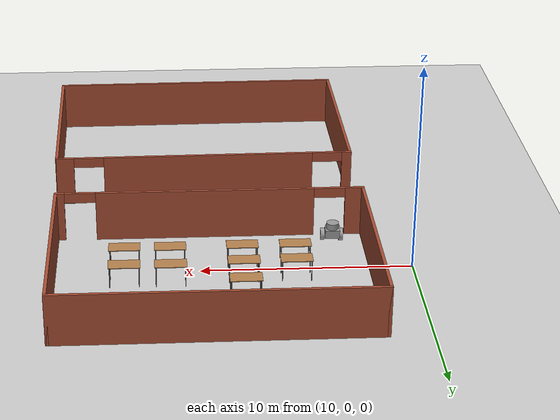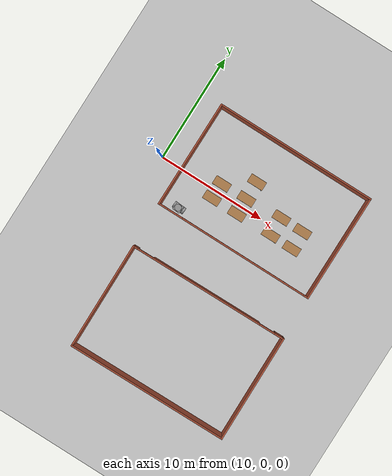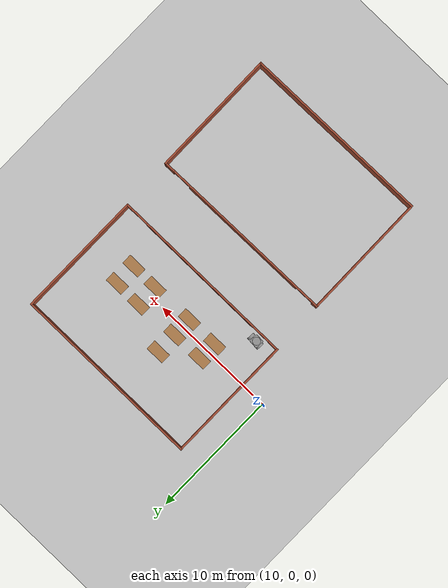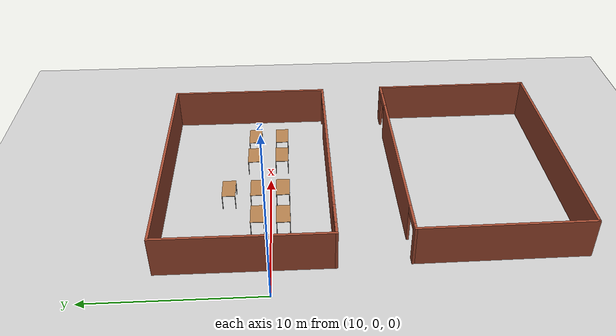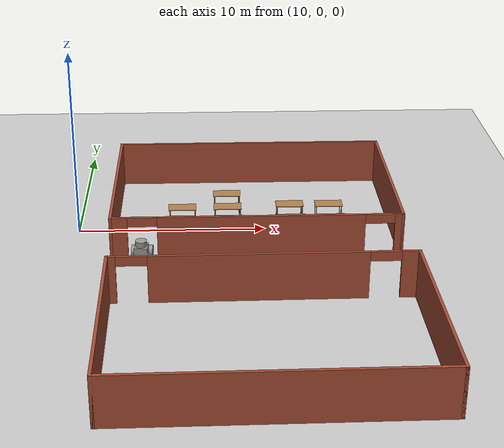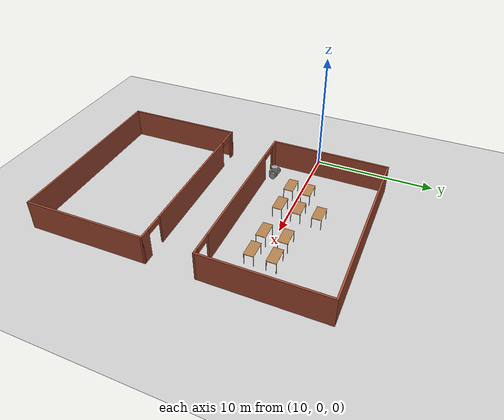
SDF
<sdf version="1.6">
 <world name="default">
  <model name="ground_plane">
   <static>1</static>
   <link name="link">
    <collision name="collision">
     <geometry><plane><normal>0 0 1</normal><size>100 100</size></plane></geometry>
     <surface>
      <contact><collide_bitmask>65535</collide_bitmask></contact>
      <friction><ode><mu>100</mu><mu2>50</mu2></ode></friction>
     </surface>
    </collision>
    <visual name="visual">
     <cast_shadows>0</cast_shadows>
     <geometry><plane><normal>0 0 1</normal><size>100 100</size></plane></geometry>
     <material>
      <script><uri>file://media/materials/scripts/gazebo.material</uri><name>Gazebo/Grey</name></script>
     </material>
    </visual>
   </link>
  </model>
  <model name="classroom_0">
   <pose>19.4231 1.37785 0 0 -0 0</pose>
   <link name="Wall_0">
    <collision name="Wall_0_Collision">
     <geometry><box><size>10 0.15 2.5</size></box></geometry>
     <pose>0 0 1.25 0 -0 0</pose>
    </collision>
    <visual name="Wall_0_Visual">
     <pose>0 0 1.25 0 -0 0</pose>
     <geometry><box><size>10 0.15 2.5</size></box></geometry>
     <material>
      <script><uri>file://media/materials/scripts/gazebo.material</uri><name>Gazebo/Bricks</name></script>
      <ambient>1 1 1 1</ambient>
     </material>
     <meta><layer>0</layer></meta>
    </visual>
    <pose>-7.425 0 0 0 -0 1.5708</pose>
   </link>
   <link name="Wall_2">
    <collision name="Wall_2_Collision">
     <geometry><box><size>15 0.15 2.5</size></box></geometry>
     <pose>0 0 1.25 0 -0 0</pose>
    </collision>
    <visual name="Wall_2_Visual">
     <pose>0 0 1.25 0 -0 0</pose>
     <geometry><box><size>15 0.15 2.5</size></box></geometry>
     <material>
      <script><uri>file://media/materials/scripts/gazebo.material</uri><name>Gazebo/Bricks</name></script>
      <ambient>1 1 1 1</ambient>
     </material>
     <meta><layer>0</layer></meta>
    </visual>
    <pose>0 4.925 0 0 -0 0</pose>
   </link>
   <link name="Wall_4">
    <collision name="Wall_4_Collision">
     <geometry><box><size>10 0.15 2.5</size></box></geometry>
     <pose>0 0 1.25 0 -0 0</pose>
    </collision>
    <visual name="Wall_4_Visual">
     <pose>0 0 1.25 0 -0 0</pose>
     <geometry><box><size>10 0.15 2.5</size></box></geometry>
     <material>
      <script><uri>file://media/materials/scripts/gazebo.material</uri><name>Gazebo/Bricks</name></script>
      <ambient>1 1 1 1</ambient>
     </material>
     <meta><layer>0</layer></meta>
    </visual>
    <pose>7.425 0 0 0 0 -1.5708</pose>
   </link>
   <link name="Wall_6">
    <pose>0 -4.925 0 0 -0 0</pose>
    <visual name="Wall_6_Visual_0">
     <pose>-7.03429 0 1.25 0 -0 0</pose>
     <geometry><box><size>0.931421 0.15 2.5</size></box></geometry>
     <material>
      <script><uri>file://media/materials/scripts/gazebo.material</uri><name>Gazebo/Bricks</name></script>
      <ambient>1 1 1 1</ambient>
     </material>
     <meta><layer>0</layer></meta>
    </visual>
    <collision name="Wall_6_Collision_0">
     <geometry><box><size>0.931421 0.15 2.5</size></box></geometry>
     <pose>-7.03429 0 1.25 0 -0 0</pose>
    </collision>
    <visual name="Wall_6_Visual_1">
     <pose>0.218509 0 1.25 0 -0 0</pose>
     <geometry><box><size>10.5742 0.15 2.5</size></box></geometry>
     <material>
      <script><uri>file://media/materials/scripts/gazebo.material</uri><name>Gazebo/Bricks</name></script>
      <ambient>1 1 1 1</ambient>
     </material>
     <meta><layer>0</layer></meta>
    </visual>
    <collision name="Wall_6_Collision_1">
     <geometry><box><size>10.5742 0.15 2.5</size></box></geometry>
     <pose>0.218509 0 1.25 0 -0 0</pose>
    </collision>
    <visual name="Wall_6_Visual_2">
     <pose>7.2528 0 1.25 0 -0 0</pose>
     <geometry><box><size>0.494402 0.15 2.5</size></box></geometry>
     <material>
      <script><uri>file://media/materials/scripts/gazebo.material</uri><name>Gazebo/Bricks</name></script>
      <ambient>1 1 1 1</ambient>
     </material>
     <meta><layer>0</layer></meta>
    </visual>
    <collision name="Wall_6_Collision_2">
     <geometry><box><size>0.494402 0.15 2.5</size></box></geometry>
     <pose>7.2528 0 1.25 0 -0 0</pose>
    </collision>
    <visual name="Wall_6_Visual_3">
     <pose>-5.81858 0 2.25 0 -0 0</pose>
     <geometry><box><size>1.5 0.15 0.5</size></box></geometry>
     <material>
      <script><uri>file://media/materials/scripts/gazebo.material</uri><name>Gazebo/Bricks</name></script>
      <ambient>1 1 1 1</ambient>
     </material>
     <meta><layer>0</layer></meta>
    </visual>
    <collision name="Wall_6_Collision_3">
     <geometry><box><size>1.5 0.15 0.5</size></box></geometry>
     <pose>-5.81858 0 2.25 0 -0 0</pose>
    </collision>
    <visual name="Wall_6_Visual_4">
     <pose>6.2556 0 2.25 0 -0 0</pose>
     <geometry><box><size>1.5 0.15 0.5</size></box></geometry>
     <material>
      <script><uri>file://media/materials/scripts/gazebo.material</uri><name>Gazebo/Bricks</name></script>
      <ambient>1 1 1 1</ambient>
     </material>
     <meta><layer>0</layer></meta>
    </visual>
    <collision name="Wall_6_Collision_4">
     <geometry><box><size>1.5 0.15 0.5</size></box></geometry>
     <pose>6.2556 0 2.25 0 -0 0</pose>
    </collision>
   </link>
   <static>1</static>
  </model>
  <model name="table">
   <static>1</static>
   <link name="link">
    <collision name="surface">
     <pose>0 0 1 0 -0 0</pose>
     <geometry><box><size>1.5 0.8 0.03</size></box></geometry>
     <surface><friction><ode><mu>0.6</mu><mu2>0.6</mu2></ode></friction></surface>
    </collision>
    <visual name="visual1">
     <pose>0 0 1 0 -0 0</pose>
     <geometry><box><size>1.5 0.8 0.03</size></box></geometry>
     <material>
      <script><uri>file://media/materials/scripts/gazebo.material</uri><name>Gazebo/Wood</name></script>
     </material>
    </visual>
    <collision name="front_left_leg">
     <pose>0.68 0.38 0.5 0 -0 0</pose>
     <geometry><cylinder><radius>0.02</radius><length>1</length></cylinder></geometry>
    </collision>
    <visual name="front_left_leg">
     <pose>0.68 0.38 0.5 0 -0 0</pose>
     <geometry><cylinder><radius>0.02</radius><length>1</length></cylinder></geometry>
     <material>
      <script><uri>file://media/materials/scripts/gazebo.material</uri><name>Gazebo/Grey</name></script>
     </material>
    </visual>
    <collision name="front_right_leg">
     <pose>0.68 -0.38 0.5 0 -0 0</pose>
     <geometry><cylinder><radius>0.02</radius><length>1</length></cylinder></geometry>
    </collision>
    <visual name="front_right_leg">
     <pose>0.68 -0.38 0.5 0 -0 0</pose>
     <geometry><cylinder><radius>0.02</radius><length>1</length></cylinder></geometry>
     <material>
      <script><uri>file://media/materials/scripts/gazebo.material</uri><name>Gazebo/Grey</name></script>
     </material>
    </visual>
    <collision name="back_right_leg">
     <pose>-0.68 -0.38 0.5 0 -0 0</pose>
     <geometry><cylinder><radius>0.02</radius><length>1</length></cylinder></geometry>
    </collision>
    <visual name="back_right_leg">
     <pose>-0.68 -0.38 0.5 0 -0 0</pose>
     <geometry><cylinder><radius>0.02</radius><length>1</length></cylinder></geometry>
     <material>
      <script><uri>file://media/materials/scripts/gazebo.material</uri><name>Gazebo/Grey</name></script>
     </material>
    </visual>
    <collision name="back_left_leg">
     <pose>-0.68 0.38 0.5 0 -0 0</pose>
     <geometry><cylinder><radius>0.02</radius><length>1</length></cylinder></geometry>
    </collision>
    <visual name="back_left_leg">
     <pose>-0.68 0.38 0.5 0 -0 0</pose>
     <geometry><cylinder><radius>0.02</radius><length>1</length></cylinder></geometry>
     <material>
      <script><uri>file://media/materials/scripts/gazebo.material</uri><name>Gazebo/Grey</name></script>
     </material>
    </visual>
   </link>
   <pose>23.5484 -0.724689 0 0 -0 0</pose>
  </model>
  <model name="table_0">
   <static>1</static>
   <link name="link">
    <collision name="surface">
     <pose>0 0 1 0 -0 0</pose>
     <geometry><box><size>1.5 0.8 0.03</size></box></geometry>
     <surface><friction><ode><mu>0.6</mu><mu2>0.6</mu2></ode></friction></surface>
    </collision>
    <visual name="visual1">
     <pose>0 0 1 0 -0 0</pose>
     <geometry><box><size>1.5 0.8 0.03</size></box></geometry>
     <material>
      <script><uri>file://media/materials/scripts/gazebo.material</uri><name>Gazebo/Wood</name></script>
     </material>
    </visual>
    <collision name="front_left_leg">
     <pose>0.68 0.38 0.5 0 -0 0</pose>
     <geometry><cylinder><radius>0.02</radius><length>1</length></cylinder></geometry>
    </collision>
    <visual name="front_left_leg">
     <pose>0.68 0.38 0.5 0 -0 0</pose>
     <geometry><cylinder><radius>0.02</radius><length>1</length></cylinder></geometry>
     <material>
      <script><uri>file://media/materials/scripts/gazebo.material</uri><name>Gazebo/Grey</name></script>
     </material>
    </visual>
    <collision name="front_right_leg">
     <pose>0.68 -0.38 0.5 0 -0 0</pose>
     <geometry><cylinder><radius>0.02</radius><length>1</length></cylinder></geometry>
    </collision>
    <visual name="front_right_leg">
     <pose>0.68 -0.38 0.5 0 -0 0</pose>
     <geometry><cylinder><radius>0.02</radius><length>1</length></cylinder></geometry>
     <material>
      <script><uri>file://media/materials/scripts/gazebo.material</uri><name>Gazebo/Grey</name></script>
     </material>
    </visual>
    <collision name="back_right_leg">
     <pose>-0.68 -0.38 0.5 0 -0 0</pose>
     <geometry><cylinder><radius>0.02</radius><length>1</length></cylinder></geometry>
    </collision>
    <visual name="back_right_leg">
     <pose>-0.68 -0.38 0.5 0 -0 0</pose>
     <geometry><cylinder><radius>0.02</radius><length>1</length></cylinder></geometry>
     <material>
      <script><uri>file://media/materials/scripts/gazebo.material</uri><name>Gazebo/Grey</name></script>
     </material>
    </visual>
    <collision name="back_left_leg">
     <pose>-0.68 0.38 0.5 0 -0 0</pose>
     <geometry><cylinder><radius>0.02</radius><length>1</length></cylinder></geometry>
    </collision>
    <visual name="back_left_leg">
     <pose>-0.68 0.38 0.5 0 -0 0</pose>
     <geometry><cylinder><radius>0.02</radius><length>1</length></cylinder></geometry>
     <material>
      <script><uri>file://media/materials/scripts/gazebo.material</uri><name>Gazebo/Grey</name></script>
     </material>
    </visual>
   </link>
   <pose>23.5484 0.989239 0 0 -0 0</pose>
  </model>
  <model name="table_3">
   <static>1</static>
   <link name="link">
    <collision name="surface">
     <pose>0 0 1 0 -0 0</pose>
     <geometry><box><size>1.5 0.8 0.03</size></box></geometry>
     <surface><friction><ode><mu>0.6</mu><mu2>0.6</mu2></ode></friction></surface>
    </collision>
    <visual name="visual1">
     <pose>0 0 1 0 -0 0</pose>
     <geometry><box><size>1.5 0.8 0.03</size></box></geometry>
     <material>
      <script><uri>file://media/materials/scripts/gazebo.material</uri><name>Gazebo/Wood</name></script>
     </material>
    </visual>
    <collision name="front_left_leg">
     <pose>0.68 0.38 0.5 0 -0 0</pose>
     <geometry><cylinder><radius>0.02</radius><length>1</length></cylinder></geometry>
    </collision>
    <visual name="front_left_leg">
     <pose>0.68 0.38 0.5 0 -0 0</pose>
     <geometry><cylinder><radius>0.02</radius><length>1</length></cylinder></geometry>
     <material>
      <script><uri>file://media/materials/scripts/gazebo.material</uri><name>Gazebo/Grey</name></script>
     </material>
    </visual>
    <collision name="front_right_leg">
     <pose>0.68 -0.38 0.5 0 -0 0</pose>
     <geometry><cylinder><radius>0.02</radius><length>1</length></cylinder></geometry>
    </collision>
    <visual name="front_right_leg">
     <pose>0.68 -0.38 0.5 0 -0 0</pose>
     <geometry><cylinder><radius>0.02</radius><length>1</length></cylinder></geometry>
     <material>
      <script><uri>file://media/materials/scripts/gazebo.material</uri><name>Gazebo/Grey</name></script>
     </material>
    </visual>
    <collision name="back_right_leg">
     <pose>-0.68 -0.38 0.5 0 -0 0</pose>
     <geometry><cylinder><radius>0.02</radius><length>1</length></cylinder></geometry>
    </collision>
    <visual name="back_right_leg">
     <pose>-0.68 -0.38 0.5 0 -0 0</pose>
     <geometry><cylinder><radius>0.02</radius><length>1</length></cylinder></geometry>
     <material>
      <script><uri>file://media/materials/scripts/gazebo.material</uri><name>Gazebo/Grey</name></script>
     </material>
    </visual>
    <collision name="back_left_leg">
     <pose>-0.68 0.38 0.5 0 -0 0</pose>
     <geometry><cylinder><radius>0.02</radius><length>1</length></cylinder></geometry>
    </collision>
    <visual name="back_left_leg">
     <pose>-0.68 0.38 0.5 0 -0 0</pose>
     <geometry><cylinder><radius>0.02</radius><length>1</length></cylinder></geometry>
     <material>
      <script><uri>file://media/materials/scripts/gazebo.material</uri><name>Gazebo/Grey</name></script>
     </material>
    </visual>
   </link>
   <pose>21.4065 -0.695779 0 0 -0 0</pose>
  </model>
  <model name="table_4">
   <static>1</static>
   <link name="link">
    <collision name="surface">
     <pose>0 0 1 0 -0 0</pose>
     <geometry><box><size>1.5 0.8 0.03</size></box></geometry>
     <surface><friction><ode><mu>0.6</mu><mu2>0.6</mu2></ode></friction></surface>
    </collision>
    <visual name="visual1">
     <pose>0 0 1 0 -0 0</pose>
     <geometry><box><size>1.5 0.8 0.03</size></box></geometry>
     <material>
      <script><uri>file://media/materials/scripts/gazebo.material</uri><name>Gazebo/Wood</name></script>
     </material>
    </visual>
    <collision name="front_left_leg">
     <pose>0.68 0.38 0.5 0 -0 0</pose>
     <geometry><cylinder><radius>0.02</radius><length>1</length></cylinder></geometry>
    </collision>
    <visual name="front_left_leg">
     <pose>0.68 0.38 0.5 0 -0 0</pose>
     <geometry><cylinder><radius>0.02</radius><length>1</length></cylinder></geometry>
     <material>
      <script><uri>file://media/materials/scripts/gazebo.material</uri><name>Gazebo/Grey</name></script>
     </material>
    </visual>
    <collision name="front_right_leg">
     <pose>0.68 -0.38 0.5 0 -0 0</pose>
     <geometry><cylinder><radius>0.02</radius><length>1</length></cylinder></geometry>
    </collision>
    <visual name="front_right_leg">
     <pose>0.68 -0.38 0.5 0 -0 0</pose>
     <geometry><cylinder><radius>0.02</radius><length>1</length></cylinder></geometry>
     <material>
      <script><uri>file://media/materials/scripts/gazebo.material</uri><name>Gazebo/Grey</name></script>
     </material>
    </visual>
    <collision name="back_right_leg">
     <pose>-0.68 -0.38 0.5 0 -0 0</pose>
     <geometry><cylinder><radius>0.02</radius><length>1</length></cylinder></geometry>
    </collision>
    <visual name="back_right_leg">
     <pose>-0.68 -0.38 0.5 0 -0 0</pose>
     <geometry><cylinder><radius>0.02</radius><length>1</length></cylinder></geometry>
     <material>
      <script><uri>file://media/materials/scripts/gazebo.material</uri><name>Gazebo/Grey</name></script>
     </material>
    </visual>
    <collision name="back_left_leg">
     <pose>-0.68 0.38 0.5 0 -0 0</pose>
     <geometry><cylinder><radius>0.02</radius><length>1</length></cylinder></geometry>
    </collision>
    <visual name="back_left_leg">
     <pose>-0.68 0.38 0.5 0 -0 0</pose>
     <geometry><cylinder><radius>0.02</radius><length>1</length></cylinder></geometry>
     <material>
      <script><uri>file://media/materials/scripts/gazebo.material</uri><name>Gazebo/Grey</name></script>
     </material>
    </visual>
   </link>
   <pose>21.4065 1.01938 0 0 -0 0</pose>
  </model>
  <model name="table_clone">
   <static>1</static>
   <link name="link">
    <collision name="surface">
     <pose>0 0 1 0 -0 0</pose>
     <geometry><box><size>1.5 0.8 0.03</size></box></geometry>
     <surface><friction><ode><mu>0.6</mu><mu2>0.6</mu2></ode></friction></surface>
    </collision>
    <visual name="visual1">
     <pose>0 0 1 0 -0 0</pose>
     <geometry><box><size>1.5 0.8 0.03</size></box></geometry>
     <material>
      <script><uri>file://media/materials/scripts/gazebo.material</uri><name>Gazebo/Wood</name></script>
     </material>
    </visual>
    <collision name="front_left_leg">
     <pose>0.68 0.38 0.5 0 -0 0</pose>
     <geometry><cylinder><radius>0.02</radius><length>1</length></cylinder></geometry>
    </collision>
    <visual name="front_left_leg">
     <pose>0.68 0.38 0.5 0 -0 0</pose>
     <geometry><cylinder><radius>0.02</radius><length>1</length></cylinder></geometry>
     <material>
      <script><uri>file://media/materials/scripts/gazebo.material</uri><name>Gazebo/Grey</name></script>
     </material>
    </visual>
    <collision name="front_right_leg">
     <pose>0.68 -0.38 0.5 0 -0 0</pose>
     <geometry><cylinder><radius>0.02</radius><length>1</length></cylinder></geometry>
    </collision>
    <visual name="front_right_leg">
     <pose>0.68 -0.38 0.5 0 -0 0</pose>
     <geometry><cylinder><radius>0.02</radius><length>1</length></cylinder></geometry>
     <material>
      <script><uri>file://media/materials/scripts/gazebo.material</uri><name>Gazebo/Grey</name></script>
     </material>
    </visual>
    <collision name="back_right_leg">
     <pose>-0.68 -0.38 0.5 0 -0 0</pose>
     <geometry><cylinder><radius>0.02</radius><length>1</length></cylinder></geometry>
    </collision>
    <visual name="back_right_leg">
     <pose>-0.68 -0.38 0.5 0 -0 0</pose>
     <geometry><cylinder><radius>0.02</radius><length>1</length></cylinder></geometry>
     <material>
      <script><uri>file://media/materials/scripts/gazebo.material</uri><name>Gazebo/Grey</name></script>
     </material>
    </visual>
    <collision name="back_left_leg">
     <pose>-0.68 0.38 0.5 0 -0 0</pose>
     <geometry><cylinder><radius>0.02</radius><length>1</length></cylinder></geometry>
    </collision>
    <visual name="back_left_leg">
     <pose>-0.68 0.38 0.5 0 -0 0</pose>
     <geometry><cylinder><radius>0.02</radius><length>1</length></cylinder></geometry>
     <material>
      <script><uri>file://media/materials/scripts/gazebo.material</uri><name>Gazebo/Grey</name></script>
     </material>
    </visual>
   </link>
   <pose>18.0095 -0.736445 0 0 -0 0</pose>
  </model>
  <model name="table_clone_clone">
   <static>1</static>
   <link name="link">
    <collision name="surface">
     <pose>0 0 1 0 -0 0</pose>
     <geometry><box><size>1.5 0.8 0.03</size></box></geometry>
     <surface><friction><ode><mu>0.6</mu><mu2>0.6</mu2></ode></friction></surface>
    </collision>
    <visual name="visual1">
     <pose>0 0 1 0 -0 0</pose>
     <geometry><box><size>1.5 0.8 0.03</size></box></geometry>
     <material>
      <script><uri>file://media/materials/scripts/gazebo.material</uri><name>Gazebo/Wood</name></script>
     </material>
    </visual>
    <collision name="front_left_leg">
     <pose>0.68 0.38 0.5 0 -0 0</pose>
     <geometry><cylinder><radius>0.02</radius><length>1</length></cylinder></geometry>
    </collision>
    <visual name="front_left_leg">
     <pose>0.68 0.38 0.5 0 -0 0</pose>
     <geometry><cylinder><radius>0.02</radius><length>1</length></cylinder></geometry>
     <material>
      <script><uri>file://media/materials/scripts/gazebo.material</uri><name>Gazebo/Grey</name></script>
     </material>
    </visual>
    <collision name="front_right_leg">
     <pose>0.68 -0.38 0.5 0 -0 0</pose>
     <geometry><cylinder><radius>0.02</radius><length>1</length></cylinder></geometry>
    </collision>
    <visual name="front_right_leg">
     <pose>0.68 -0.38 0.5 0 -0 0</pose>
     <geometry><cylinder><radius>0.02</radius><length>1</length></cylinder></geometry>
     <material>
      <script><uri>file://media/materials/scripts/gazebo.material</uri><name>Gazebo/Grey</name></script>
     </material>
    </visual>
    <collision name="back_right_leg">
     <pose>-0.68 -0.38 0.5 0 -0 0</pose>
     <geometry><cylinder><radius>0.02</radius><length>1</length></cylinder></geometry>
    </collision>
    <visual name="back_right_leg">
     <pose>-0.68 -0.38 0.5 0 -0 0</pose>
     <geometry><cylinder><radius>0.02</radius><length>1</length></cylinder></geometry>
     <material>
      <script><uri>file://media/materials/scripts/gazebo.material</uri><name>Gazebo/Grey</name></script>
     </material>
    </visual>
    <collision name="back_left_leg">
     <pose>-0.68 0.38 0.5 0 -0 0</pose>
     <geometry><cylinder><radius>0.02</radius><length>1</length></cylinder></geometry>
    </collision>
    <visual name="back_left_leg">
     <pose>-0.68 0.38 0.5 0 -0 0</pose>
     <geometry><cylinder><radius>0.02</radius><length>1</length></cylinder></geometry>
     <material>
      <script><uri>file://media/materials/scripts/gazebo.material</uri><name>Gazebo/Grey</name></script>
     </material>
    </visual>
   </link>
   <pose>18.0095 0.789 0 0 -0 0</pose>
  </model>
  <model name="table_clone_clone_clone">
   <static>1</static>
   <link name="link">
    <collision name="surface">
     <pose>0 0 1 0 -0 0</pose>
     <geometry><box><size>1.5 0.8 0.03</size></box></geometry>
     <surface><friction><ode><mu>0.6</mu><mu2>0.6</mu2></ode></friction></surface>
    </collision>
    <visual name="visual1">
     <pose>0 0 1 0 -0 0</pose>
     <geometry><box><size>1.5 0.8 0.03</size></box></geometry>
     <material>
      <script><uri>file://media/materials/scripts/gazebo.material</uri><name>Gazebo/Wood</name></script>
     </material>
    </visual>
    <collision name="front_left_leg">
     <pose>0.68 0.38 0.5 0 -0 0</pose>
     <geometry><cylinder><radius>0.02</radius><length>1</length></cylinder></geometry>
    </collision>
    <visual name="front_left_leg">
     <pose>0.68 0.38 0.5 0 -0 0</pose>
     <geometry><cylinder><radius>0.02</radius><length>1</length></cylinder></geometry>
     <material>
      <script><uri>file://media/materials/scripts/gazebo.material</uri><name>Gazebo/Grey</name></script>
     </material>
    </visual>
    <collision name="front_right_leg">
     <pose>0.68 -0.38 0.5 0 -0 0</pose>
     <geometry><cylinder><radius>0.02</radius><length>1</length></cylinder></geometry>
    </collision>
    <visual name="front_right_leg">
     <pose>0.68 -0.38 0.5 0 -0 0</pose>
     <geometry><cylinder><radius>0.02</radius><length>1</length></cylinder></geometry>
     <material>
      <script><uri>file://media/materials/scripts/gazebo.material</uri><name>Gazebo/Grey</name></script>
     </material>
    </visual>
    <collision name="back_right_leg">
     <pose>-0.68 -0.38 0.5 0 -0 0</pose>
     <geometry><cylinder><radius>0.02</radius><length>1</length></cylinder></geometry>
    </collision>
    <visual name="back_right_leg">
     <pose>-0.68 -0.38 0.5 0 -0 0</pose>
     <geometry><cylinder><radius>0.02</radius><length>1</length></cylinder></geometry>
     <material>
      <script><uri>file://media/materials/scripts/gazebo.material</uri><name>Gazebo/Grey</name></script>
     </material>
    </visual>
    <collision name="back_left_leg">
     <pose>-0.68 0.38 0.5 0 -0 0</pose>
     <geometry><cylinder><radius>0.02</radius><length>1</length></cylinder></geometry>
    </collision>
    <visual name="back_left_leg">
     <pose>-0.68 0.38 0.5 0 -0 0</pose>
     <geometry><cylinder><radius>0.02</radius><length>1</length></cylinder></geometry>
     <material>
      <script><uri>file://media/materials/scripts/gazebo.material</uri><name>Gazebo/Grey</name></script>
     </material>
    </visual>
   </link>
   <pose>18.0095 2.47853 0 0 -0 0</pose>
  </model>
  <model name="table_clone_clone_clone_clone_0">
   <static>1</static>
   <link name="link">
    <collision name="surface">
     <pose>0 0 1 0 -0 0</pose>
     <geometry><box><size>1.5 0.8 0.03</size></box></geometry>
     <surface><friction><ode><mu>0.6</mu><mu2>0.6</mu2></ode></friction></surface>
    </collision>
    <visual name="visual1">
     <pose>0 0 1 0 -0 0</pose>
     <geometry><box><size>1.5 0.8 0.03</size></box></geometry>
     <material>
      <script><uri>file://media/materials/scripts/gazebo.material</uri><name>Gazebo/Wood</name></script>
     </material>
    </visual>
    <collision name="front_left_leg">
     <pose>0.68 0.38 0.5 0 -0 0</pose>
     <geometry><cylinder><radius>0.02</radius><length>1</length></cylinder></geometry>
    </collision>
    <visual name="front_left_leg">
     <pose>0.68 0.38 0.5 0 -0 0</pose>
     <geometry><cylinder><radius>0.02</radius><length>1</length></cylinder></geometry>
     <material>
      <script><uri>file://media/materials/scripts/gazebo.material</uri><name>Gazebo/Grey</name></script>
     </material>
    </visual>
    <collision name="front_right_leg">
     <pose>0.68 -0.38 0.5 0 -0 0</pose>
     <geometry><cylinder><radius>0.02</radius><length>1</length></cylinder></geometry>
    </collision>
    <visual name="front_right_leg">
     <pose>0.68 -0.38 0.5 0 -0 0</pose>
     <geometry><cylinder><radius>0.02</radius><length>1</length></cylinder></geometry>
     <material>
      <script><uri>file://media/materials/scripts/gazebo.material</uri><name>Gazebo/Grey</name></script>
     </material>
    </visual>
    <collision name="back_right_leg">
     <pose>-0.68 -0.38 0.5 0 -0 0</pose>
     <geometry><cylinder><radius>0.02</radius><length>1</length></cylinder></geometry>
    </collision>
    <visual name="back_right_leg">
     <pose>-0.68 -0.38 0.5 0 -0 0</pose>
     <geometry><cylinder><radius>0.02</radius><length>1</length></cylinder></geometry>
     <material>
      <script><uri>file://media/materials/scripts/gazebo.material</uri><name>Gazebo/Grey</name></script>
     </material>
    </visual>
    <collision name="back_left_leg">
     <pose>-0.68 0.38 0.5 0 -0 0</pose>
     <geometry><cylinder><radius>0.02</radius><length>1</length></cylinder></geometry>
    </collision>
    <visual name="back_left_leg">
     <pose>-0.68 0.38 0.5 0 -0 0</pose>
     <geometry><cylinder><radius>0.02</radius><length>1</length></cylinder></geometry>
     <material>
      <script><uri>file://media/materials/scripts/gazebo.material</uri><name>Gazebo/Grey</name></script>
     </material>
    </visual>
   </link>
   <pose>15.5008 -0.736776 0 0 -0 0</pose>
  </model>
  <model name="table_clone_clone_clone_clone_0_clone">
   <static>1</static>
   <link name="link">
    <collision name="surface">
     <pose>0 0 1 0 -0 0</pose>
     <geometry><box><size>1.5 0.8 0.03</size></box></geometry>
     <surface><friction><ode><mu>0.6</mu><mu2>0.6</mu2></ode></friction></surface>
    </collision>
    <visual name="visual1">
     <pose>0 0 1 0 -0 0</pose>
     <geometry><box><size>1.5 0.8 0.03</size></box></geometry>
     <material>
      <script><uri>file://media/materials/scripts/gazebo.material</uri><name>Gazebo/Wood</name></script>
     </material>
    </visual>
    <collision name="front_left_leg">
     <pose>0.68 0.38 0.5 0 -0 0</pose>
     <geometry><cylinder><radius>0.02</radius><length>1</length></cylinder></geometry>
    </collision>
    <visual name="front_left_leg">
     <pose>0.68 0.38 0.5 0 -0 0</pose>
     <geometry><cylinder><radius>0.02</radius><length>1</length></cylinder></geometry>
     <material>
      <script><uri>file://media/materials/scripts/gazebo.material</uri><name>Gazebo/Grey</name></script>
     </material>
    </visual>
    <collision name="front_right_leg">
     <pose>0.68 -0.38 0.5 0 -0 0</pose>
     <geometry><cylinder><radius>0.02</radius><length>1</length></cylinder></geometry>
    </collision>
    <visual name="front_right_leg">
     <pose>0.68 -0.38 0.5 0 -0 0</pose>
     <geometry><cylinder><radius>0.02</radius><length>1</length></cylinder></geometry>
     <material>
      <script><uri>file://media/materials/scripts/gazebo.material</uri><name>Gazebo/Grey</name></script>
     </material>
    </visual>
    <collision name="back_right_leg">
     <pose>-0.68 -0.38 0.5 0 -0 0</pose>
     <geometry><cylinder><radius>0.02</radius><length>1</length></cylinder></geometry>
    </collision>
    <visual name="back_right_leg">
     <pose>-0.68 -0.38 0.5 0 -0 0</pose>
     <geometry><cylinder><radius>0.02</radius><length>1</length></cylinder></geometry>
     <material>
      <script><uri>file://media/materials/scripts/gazebo.material</uri><name>Gazebo/Grey</name></script>
     </material>
    </visual>
    <collision name="back_left_leg">
     <pose>-0.68 0.38 0.5 0 -0 0</pose>
     <geometry><cylinder><radius>0.02</radius><length>1</length></cylinder></geometry>
    </collision>
    <visual name="back_left_leg">
     <pose>-0.68 0.38 0.5 0 -0 0</pose>
     <geometry><cylinder><radius>0.02</radius><length>1</length></cylinder></geometry>
     <material>
      <script><uri>file://media/materials/scripts/gazebo.material</uri><name>Gazebo/Grey</name></script>
     </material>
    </visual>
   </link>
   <pose>15.5621 0.7467 0 0 -0 0</pose>
  </model>
  <model name="classroom_1">
   <pose>19.5929 -12.5754 0 0 0 -3.13167</pose>
   <link name="Wall_0">
    <collision name="Wall_0_Collision">
     <geometry><box><size>10 0.15 2.5</size></box></geometry>
     <pose>0 0 1.25 0 -0 0</pose>
    </collision>
    <visual name="Wall_0_Visual">
     <pose>0 0 1.25 0 -0 0</pose>
     <geometry><box><size>10 0.15 2.5</size></box></geometry>
     <material>
      <script><uri>file://media/materials/scripts/gazebo.material</uri><name>Gazebo/Bricks</name></script>
      <ambient>1 1 1 1</ambient>
     </material>
     <meta><layer>0</layer></meta>
    </visual>
    <pose>-7.425 0 0 0 -0 1.5708</pose>
   </link>
   <link name="Wall_2">
    <collision name="Wall_2_Collision">
     <geometry><box><size>15 0.15 2.5</size></box></geometry>
     <pose>0 0 1.25 0 -0 0</pose>
    </collision>
    <visual name="Wall_2_Visual">
     <pose>0 0 1.25 0 -0 0</pose>
     <geometry><box><size>15 0.15 2.5</size></box></geometry>
     <material>
      <script><uri>file://media/materials/scripts/gazebo.material</uri><name>Gazebo/Bricks</name></script>
      <ambient>1 1 1 1</ambient>
     </material>
     <meta><layer>0</layer></meta>
    </visual>
    <pose>0 4.925 0 0 -0 0</pose>
   </link>
   <link name="Wall_4">
    <collision name="Wall_4_Collision">
     <geometry><box><size>10 0.15 2.5</size></box></geometry>
     <pose>0 0 1.25 0 -0 0</pose>
    </collision>
    <visual name="Wall_4_Visual">
     <pose>0 0 1.25 0 -0 0</pose>
     <geometry><box><size>10 0.15 2.5</size></box></geometry>
     <material>
      <script><uri>file://media/materials/scripts/gazebo.material</uri><name>Gazebo/Bricks</name></script>
      <ambient>1 1 1 1</ambient>
     </material>
     <meta><layer>0</layer></meta>
    </visual>
    <pose>7.425 0 0 0 0 -1.5708</pose>
   </link>
   <link name="Wall_6">
    <pose>0 -4.925 0 0 -0 0</pose>
    <visual name="Wall_6_Visual_0">
     <pose>-7.03429 0 1.25 0 -0 0</pose>
     <geometry><box><size>0.931421 0.15 2.5</size></box></geometry>
     <material>
      <script><uri>file://media/materials/scripts/gazebo.material</uri><name>Gazebo/Bricks</name></script>
      <ambient>1 1 1 1</ambient>
     </material>
     <meta><layer>0</layer></meta>
    </visual>
    <collision name="Wall_6_Collision_0">
     <geometry><box><size>0.931421 0.15 2.5</size></box></geometry>
     <pose>-7.03429 0 1.25 0 -0 0</pose>
    </collision>
    <visual name="Wall_6_Visual_1">
     <pose>0.218509 0 1.25 0 -0 0</pose>
     <geometry><box><size>10.5742 0.15 2.5</size></box></geometry>
     <material>
      <script><uri>file://media/materials/scripts/gazebo.material</uri><name>Gazebo/Bricks</name></script>
      <ambient>1 1 1 1</ambient>
     </material>
     <meta><layer>0</layer></meta>
    </visual>
    <collision name="Wall_6_Collision_1">
     <geometry><box><size>10.5742 0.15 2.5</size></box></geometry>
     <pose>0.218509 0 1.25 0 -0 0</pose>
    </collision>
    <visual name="Wall_6_Visual_2">
     <pose>7.2528 0 1.25 0 -0 0</pose>
     <geometry><box><size>0.494402 0.15 2.5</size></box></geometry>
     <material>
      <script><uri>file://media/materials/scripts/gazebo.material</uri><name>Gazebo/Bricks</name></script>
      <ambient>1 1 1 1</ambient>
     </material>
     <meta><layer>0</layer></meta>
    </visual>
    <collision name="Wall_6_Collision_2">
     <geometry><box><size>0.494402 0.15 2.5</size></box></geometry>
     <pose>7.2528 0 1.25 0 -0 0</pose>
    </collision>
    <visual name="Wall_6_Visual_3">
     <pose>-5.81858 0 2.25 0 -0 0</pose>
     <geometry><box><size>1.5 0.15 0.5</size></box></geometry>
     <material>
      <script><uri>file://media/materials/scripts/gazebo.material</uri><name>Gazebo/Bricks</name></script>
      <ambient>1 1 1 1</ambient>
     </material>
     <meta><layer>0</layer></meta>
    </visual>
    <collision name="Wall_6_Collision_3">
     <geometry><box><size>1.5 0.15 0.5</size></box></geometry>
     <pose>-5.81858 0 2.25 0 -0 0</pose>
    </collision>
    <visual name="Wall_6_Visual_4">
     <pose>6.2556 0 2.25 0 -0 0</pose>
     <geometry><box><size>1.5 0.15 0.5</size></box></geometry>
     <material>
      <script><uri>file://media/materials/scripts/gazebo.material</uri><name>Gazebo/Bricks</name></script>
      <ambient>1 1 1 1</ambient>
     </material>
     <meta><layer>0</layer></meta>
    </visual>
    <collision name="Wall_6_Collision_4">
     <geometry><box><size>1.5 0.15 0.5</size></box></geometry>
     <pose>6.2556 0 2.25 0 -0 0</pose>
    </collision>
   </link>
   <static>1</static>
  </model>
  <model name="vacuumrobot_0_clone_0">
   <link name="link_0">
    <pose>-0.01 -0.018 0.01 0 -0 0</pose>
    <inertial>
     <mass>1</mass>
     <inertia>
      <ixx>0.166667</ixx>
      <ixy>0</ixy>
      <ixz>0</ixz>
      <iyy>0.166667</iyy>
      <iyz>0</iyz>
      <izz>0.166667</izz>
     </inertia>
    </inertial>
    <visual name="visual">
     <geometry><box><size>0.7 0.7 0.4</size></box></geometry>
     <material>
      <lighting>1</lighting>
      <script><uri>file://media/materials/scripts/gazebo.material</uri><name>Gazebo/Grey</name></script>
      <shader type="pixel"><normal_map>__default__</normal_map></shader>
      <ambient>0.3 0.3 0.3 1</ambient>
      <diffuse>0.7 0.7 0.7 1</diffuse>
      <specular>0.01 0.01 0.01 1</specular>
      <emissive>0 0 0 1</emissive>
     </material>
    </visual>
    <collision name="collision">
     <geometry><box><size>0.7 0.7 0.4</size></box></geometry>
     <surface>
      <friction>
       <ode><mu>1</mu><mu2>1</mu2><fdir1>0 0 0</fdir1><slip1>0</slip1><slip2>0</slip2></ode>
       <torsional>
        <coefficient>1</coefficient>
        <patch_radius>0</patch_radius>
        <surface_radius>0</surface_radius>
        <use_patch_radius>1</use_patch_radius>
        <ode><slip>0</slip></ode>
       </torsional>
      </friction>
      <bounce><restitution_coefficient>0</restitution_coefficient><threshold>1e+06</threshold></bounce>
      <contact>
       <collide_without_contact>0</collide_without_contact>
       <collide_without_contact_bitmask>1</collide_without_contact_bitmask>
       <collide_bitmask>1</collide_bitmask>
       <ode>
        <soft_cfm>0</soft_cfm>
        <soft_erp>0.2</soft_erp>
        <kp>1e+13</kp>
        <kd>1</kd>
        <max_vel>0.01</max_vel>
        <min_depth>0</min_depth>
       </ode>
       <bullet>
        <split_impulse>1</split_impulse>
        <split_impulse_penetration_threshold>-0.01</split_impulse_penetration_threshold>
        <soft_cfm>0</soft_cfm>
        <soft_erp>0.2</soft_erp>
        <kp>1e+13</kp>
        <kd>1</kd>
       </bullet>
      </contact>
     </surface>
    </collision>
   </link>
   <link name="link_1">
    <pose>-0.06 0.472029 -0.09 1.5707 -0 0</pose>
    <inertial>
     <mass>1</mass>
     <inertia><ixx>0.145833</ixx><ixy>0</ixy><ixz>0</ixz><iyy>0.145833</iyy><iyz>0</iyz><izz>0.125</izz></inertia>
    </inertial>
    <visual name="visual">
     <geometry><cylinder><radius>0.3</radius><length>0.2</length></cylinder></geometry>
     <material>
      <lighting>1</lighting>
      <script><uri>file://media/materials/scripts/gazebo.material</uri><name>Gazebo/Grey</name></script>
      <shader type="pixel"><normal_map>__default__</normal_map></shader>
      <ambient>0.3 0.3 0.3 1</ambient>
      <diffuse>0.7 0.7 0.7 1</diffuse>
      <specular>0.01 0.01 0.01 1</specular>
      <emissive>0 0 0 1</emissive>
     </material>
    </visual>
    <collision name="collision">
     <geometry><cylinder><radius>0.3</radius><length>0.2</length></cylinder></geometry>
     <surface>
      <friction>
       <ode><mu>1</mu><mu2>1</mu2><fdir1>0 0 0</fdir1><slip1>0</slip1><slip2>0</slip2></ode>
       <torsional>
        <coefficient>1</coefficient>
        <patch_radius>0</patch_radius>
        <surface_radius>0</surface_radius>
        <use_patch_radius>1</use_patch_radius>
        <ode><slip>0</slip></ode>
       </torsional>
      </friction>
      <bounce><restitution_coefficient>0</restitution_coefficient><threshold>1e+06</threshold></bounce>
      <contact>
       <collide_without_contact>0</collide_without_contact>
       <collide_without_contact_bitmask>1</collide_without_contact_bitmask>
       <collide_bitmask>1</collide_bitmask>
       <ode>
        <soft_cfm>0</soft_cfm>
        <soft_erp>0.2</soft_erp>
        <kp>1e+13</kp>
        <kd>1</kd>
        <max_vel>0.01</max_vel>
        <min_depth>0</min_depth>
       </ode>
       <bullet>
        <split_impulse>1</split_impulse>
        <split_impulse_penetration_threshold>-0.01</split_impulse_penetration_threshold>
        <soft_cfm>0</soft_cfm>
        <soft_erp>0.2</soft_erp>
        <kp>1e+13</kp>
        <kd>1</kd>
       </bullet>
      </contact>
     </surface>
    </collision>
   </link>
   <link name="link_1_clone">
    <pose>-0.06 -0.41803 -0.09 1.5707 -0 0</pose>
    <inertial>
     <mass>1</mass>
     <inertia><ixx>0.145833</ixx><ixy>0</ixy><ixz>0</ixz><iyy>0.145833</iyy><iyz>0</iyz><izz>0.125</izz></inertia>
    </inertial>
    <visual name="visual">
     <geometry><cylinder><radius>0.3</radius><length>0.2</length></cylinder></geometry>
     <material>
      <lighting>1</lighting>
      <script><uri>file://media/materials/scripts/gazebo.material</uri><name>Gazebo/Grey</name></script>
      <shader type="pixel"><normal_map>__default__</normal_map></shader>
      <ambient>0.3 0.3 0.3 1</ambient>
      <diffuse>0.7 0.7 0.7 1</diffuse>
      <specular>0.01 0.01 0.01 1</specular>
      <emissive>0 0 0 1</emissive>
     </material>
    </visual>
    <collision name="collision">
     <geometry><cylinder><radius>0.3</radius><length>0.2</length></cylinder></geometry>
     <surface>
      <friction>
       <ode><mu>1</mu><mu2>1</mu2><fdir1>0 0 0</fdir1><slip1>0</slip1><slip2>0</slip2></ode>
       <torsional>
        <coefficient>1</coefficient>
        <patch_radius>0</patch_radius>
        <surface_radius>0</surface_radius>
        <use_patch_radius>1</use_patch_radius>
        <ode><slip>0</slip></ode>
       </torsional>
      </friction>
      <bounce><restitution_coefficient>0</restitution_coefficient><threshold>1e+06</threshold></bounce>
      <contact>
       <collide_without_contact>0</collide_without_contact>
       <collide_without_contact_bitmask>1</collide_without_contact_bitmask>
       <collide_bitmask>1</collide_bitmask>
       <ode>
        <soft_cfm>0</soft_cfm>
        <soft_erp>0.2</soft_erp>
        <kp>1e+13</kp>
        <kd>1</kd>
        <max_vel>0.01</max_vel>
        <min_depth>0</min_depth>
       </ode>
       <bullet>
        <split_impulse>1</split_impulse>
        <split_impulse_penetration_threshold>-0.01</split_impulse_penetration_threshold>
        <soft_cfm>0</soft_cfm>
        <soft_erp>0.2</soft_erp>
        <kp>1e+13</kp>
        <kd>1</kd>
       </bullet>
      </contact>
     </surface>
    </collision>
   </link>
   <link name="link_2">
    <pose>0.14 -0.018 -0.19 0 -0 0</pose>
    <inertial>
     <mass>1</mass>
     <inertia><ixx>0.1</ixx><ixy>0</ixy><ixz>0</ixz><iyy>0.1</iyy><iyz>0</iyz><izz>0.1</izz></inertia>
    </inertial>
    <visual name="visual">
     <geometry><sphere><radius>0.2</radius></sphere></geometry>
     <material>
      <lighting>1</lighting>
      <script><uri>file://media/materials/scripts/gazebo.material</uri><name>Gazebo/Grey</name></script>
      <shader type="pixel"><normal_map>__default__</normal_map></shader>
      <ambient>0.3 0.3 0.3 1</ambient>
      <diffuse>0.7 0.7 0.7 1</diffuse>
      <specular>0.01 0.01 0.01 1</specular>
      <emissive>0 0 0 1</emissive>
     </material>
    </visual>
    <collision name="collision">
     <geometry><sphere><radius>0.2</radius></sphere></geometry>
     <surface>
      <friction>
       <ode><mu>1</mu><mu2>1</mu2><fdir1>0 0 0</fdir1><slip1>0</slip1><slip2>0</slip2></ode>
       <torsional>
        <coefficient>1</coefficient>
        <patch_radius>0</patch_radius>
        <surface_radius>0</surface_radius>
        <use_patch_radius>1</use_patch_radius>
        <ode><slip>0</slip></ode>
       </torsional>
      </friction>
      <bounce><restitution_coefficient>0</restitution_coefficient><threshold>1e+06</threshold></bounce>
      <contact>
       <collide_without_contact>0</collide_without_contact>
       <collide_without_contact_bitmask>1</collide_without_contact_bitmask>
       <collide_bitmask>1</collide_bitmask>
       <ode>
        <soft_cfm>0</soft_cfm>
        <soft_erp>0.2</soft_erp>
        <kp>1e+13</kp>
        <kd>1</kd>
        <max_vel>0.01</max_vel>
        <min_depth>0</min_depth>
       </ode>
       <bullet>
        <split_impulse>1</split_impulse>
        <split_impulse_penetration_threshold>-0.01</split_impulse_penetration_threshold>
        <soft_cfm>0</soft_cfm>
        <soft_erp>0.2</soft_erp>
        <kp>1e+13</kp>
        <kd>1</kd>
       </bullet>
      </contact>
     </surface>
    </collision>
   </link>
   <link name="link_3">
    <pose>-0.01 -0.018 0.36 0 -0 0</pose>
    <inertial>
     <mass>1</mass>
     <inertia><ixx>0.145833</ixx><ixy>0</ixy><ixz>0</ixz><iyy>0.145833</iyy><iyz>0</iyz><izz>0.125</izz></inertia>
    </inertial>
    <visual name="visual">
     <geometry><cylinder><radius>0.3</radius><length>0.3</length></cylinder></geometry>
     <material>
      <lighting>1</lighting>
      <script><uri>file://media/materials/scripts/gazebo.material</uri><name>Gazebo/Grey</name></script>
      <shader type="pixel"><normal_map>__default__</normal_map></shader>
      <ambient>0.3 0.3 0.3 1</ambient>
      <diffuse>0.7 0.7 0.7 1</diffuse>
      <specular>0.01 0.01 0.01 1</specular>
      <emissive>0 0 0 1</emissive>
     </material>
    </visual>
    <collision name="collision">
     <geometry><cylinder><radius>0.3</radius><length>0.3</length></cylinder></geometry>
     <surface>
      <friction>
       <ode><mu>1</mu><mu2>1</mu2><fdir1>0 0 0</fdir1><slip1>0</slip1><slip2>0</slip2></ode>
       <torsional>
        <coefficient>1</coefficient>
        <patch_radius>0</patch_radius>
        <surface_radius>0</surface_radius>
        <use_patch_radius>1</use_patch_radius>
        <ode><slip>0</slip></ode>
       </torsional>
      </friction>
      <bounce><restitution_coefficient>0</restitution_coefficient><threshold>1e+06</threshold></bounce>
      <contact>
       <collide_without_contact>0</collide_without_contact>
       <collide_without_contact_bitmask>1</collide_without_contact_bitmask>
       <collide_bitmask>1</collide_bitmask>
       <ode>
        <soft_cfm>0</soft_cfm>
        <soft_erp>0.2</soft_erp>
        <kp>1e+13</kp>
        <kd>1</kd>
        <max_vel>0.01</max_vel>
        <min_depth>0</min_depth>
       </ode>
       <bullet>
        <split_impulse>1</split_impulse>
        <split_impulse_penetration_threshold>-0.01</split_impulse_penetration_threshold>
        <soft_cfm>0</soft_cfm>
        <soft_erp>0.2</soft_erp>
        <kp>1e+13</kp>
        <kd>1</kd>
       </bullet>
      </contact>
     </surface>
    </collision>
   </link>
   <joint name="link_0_JOINT_2" type="revolute">
    <parent>link_0</parent>
    <child>link_1_clone</child>
    <axis>
     <xyz>0 0 1</xyz>
     <use_parent_model_frame>0</use_parent_model_frame>
     <limit>
      <lower>-1.79769e+308</lower>
      <upper>1.79769e+308</upper>
      <effort>-1</effort>
      <velocity>-1</velocity>
     </limit>
     <dynamics>
      <spring_reference>0</spring_reference>
      <spring_stiffness>0</spring_stiffness>
      <damping>0</damping>
     </dynamics>
    </axis>
    <physics>
     <ode><limit><cfm>0</cfm><erp>0.2</erp></limit><suspension><cfm>0</cfm><erp>0.2</erp></suspension></ode>
    </physics>
   </joint>
   <joint name="link_0_JOINT_4" type="revolute">
    <parent>link_0</parent>
    <child>link_2</child>
    <axis>
     <xyz>1 0 0</xyz>
     <use_parent_model_frame>0</use_parent_model_frame>
     <limit>
      <lower>-1.79769e+308</lower>
      <upper>1.79769e+308</upper>
      <effort>-1</effort>
      <velocity>-1</velocity>
     </limit>
     <dynamics>
      <spring_reference>0</spring_reference>
      <spring_stiffness>0</spring_stiffness>
      <damping>0</damping>
     </dynamics>
    </axis>
    <physics>
     <ode><limit><cfm>0</cfm><erp>0.2</erp></limit><suspension><cfm>0</cfm><erp>0.2</erp></suspension></ode>
    </physics>
   </joint>
   <joint name="link_0_JOINT_7" type="revolute">
    <parent>link_0</parent>
    <child>link_1</child>
    <axis>
     <xyz>0 0 1</xyz>
     <use_parent_model_frame>0</use_parent_model_frame>
     <limit>
      <lower>-1.79769e+308</lower>
      <upper>1.79769e+308</upper>
      <effort>-1</effort>
      <velocity>-1</velocity>
     </limit>
     <dynamics>
      <spring_reference>0</spring_reference>
      <spring_stiffness>0</spring_stiffness>
      <damping>0</damping>
     </dynamics>
    </axis>
    <physics>
     <ode><limit><cfm>0</cfm><erp>0.2</erp></limit><suspension><cfm>0</cfm><erp>0.2</erp></suspension></ode>
    </physics>
   </joint>
   <joint name="link_0_JOINT_8" type="revolute">
    <parent>link_0</parent>
    <child>link_3</child>
    <axis>
     <xyz>0 0 1</xyz>
     <use_parent_model_frame>0</use_parent_model_frame>
     <limit>
      <lower>-1.79769e+308</lower>
      <upper>1.79769e+308</upper>
      <effort>-1</effort>
      <velocity>-1</velocity>
     </limit>
     <dynamics>
      <spring_reference>0</spring_reference>
      <spring_stiffness>0</spring_stiffness>
      <damping>0</damping>
     </dynamics>
    </axis>
    <physics>
     <ode><limit><cfm>0</cfm><erp>0.2</erp></limit><suspension><cfm>0</cfm><erp>0.2</erp></suspension></ode>
    </physics>
   </joint>
   <static>0</static>
   <pose>13.4961 -2.98195 0.390003 8e-06 4e-05 -1.64091</pose>
  </model>
 </world>
</sdf>
